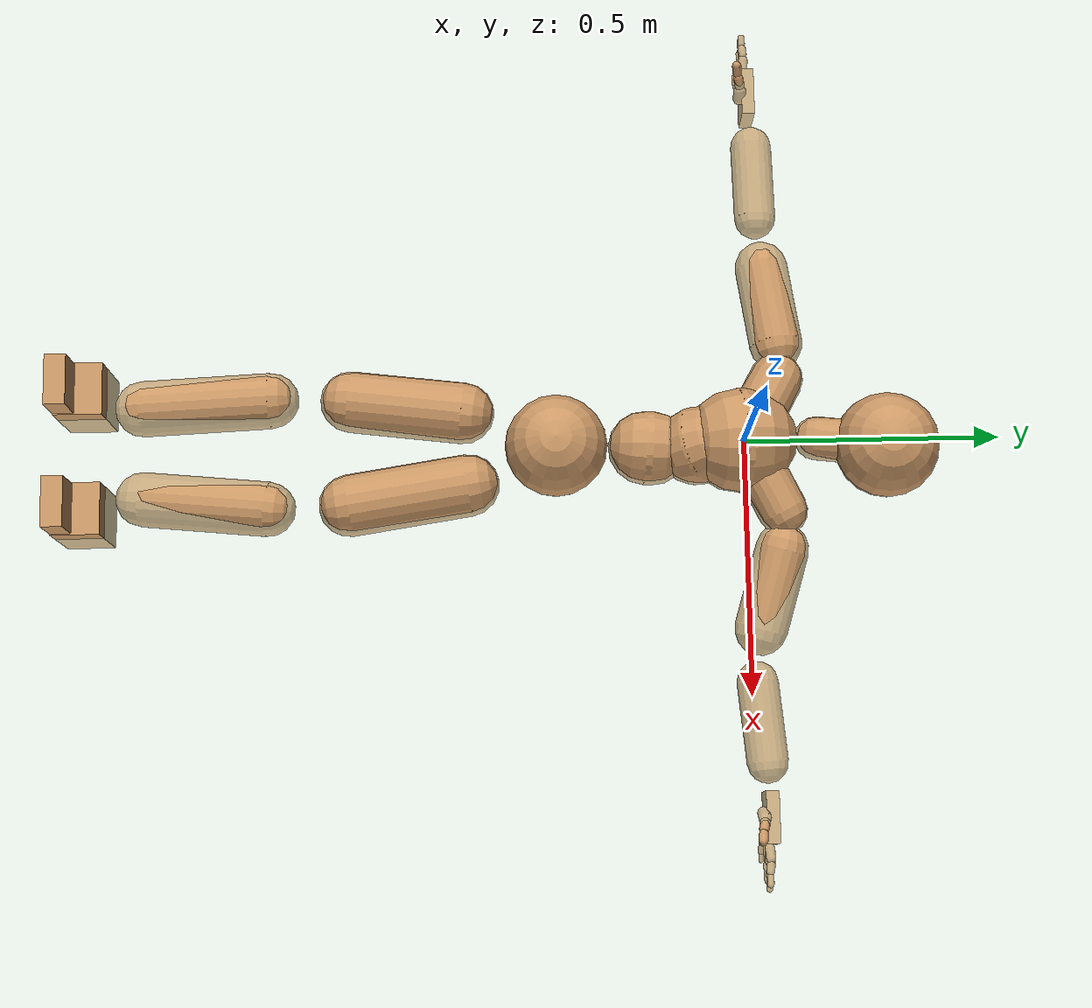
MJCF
<mujoco model="humanoid">
  <compiler coordinate="local"/>
  <default>
    <joint damping="0.0" armature="0.01" stiffness="0.0" limited="true"/>
    <geom conaffinity="1" condim="3" contype="7" margin="0.001" rgba="0.8 0.6 .4 1"/>
  </default>
  <asset>
    <texture type="skybox" builtin="gradient" rgb1=".4 .5 .6" rgb2="0 0 0" width="100" height="100"/>
    <texture builtin="flat" height="1278" mark="cross" markrgb="1 1 1" name="texgeom" random="0.01" rgb1="0.8 0.6 0.4" rgb2="0.8 0.6 0.4" type="cube" width="127"/>
    <texture builtin="checker" height="100" name="texplane" rgb1="0 0 0" rgb2="0.8 0.8 0.8" type="2d" width="100"/>
    <material name="MatPlane" reflectance="0.5" shininess="1" specular="1" texrepeat="60 60" texture="texplane"/>
    <material name="geom" texture="texgeom" texuniform="true"/>
  </asset>
  <worldbody>
    <light cutoff="100" diffuse="1 1 1" dir="-0 0 -1.3" directional="true" exponent="1" pos="0 0 1.3" specular=".1 .1 .1"/>
    <geom conaffinity="1" condim="3" name="floor" pos="0 0 0" rgba="0.8 0.9 0.8 1" size="100 100 .2" type="plane" material="MatPlane"/>
    <body name="Pelvis" pos="0.003 -0.3689 0.0058">
      <freejoint name="Pelvis"/>
      <geom type="sphere" contype="1" conaffinity="1" density="4629.6296296296305" size="0.1006" pos="0.0000 0.0000 0.0000" name="Pelvis"/>
      <body name="L_Hip" pos="0.0589 -0.0956 -0.0272">
        <joint name="L_Hip_x" type="hinge" pos="0 0 0" axis="1 0 0" user="250 2.5 1 500 10 2" armature="0.01" range="-90.0000 90.0000" damping="0" stiffness="0"/>
        <joint name="L_Hip_y" type="hinge" pos="0 0 0" axis="0 1 0" user="250 2.5 1 500 10 2" armature="0.01" range="-90.0000 90.0000" damping="0" stiffness="0"/>
        <joint name="L_Hip_z" type="hinge" pos="0 0 0" axis="0 0 1" user="250 2.5 1 500 10 2" armature="0.01" range="-90.0000 90.0000" damping="0" stiffness="0"/>
        <geom type="capsule" contype="1" conaffinity="1" density="2040.816327" fromto="0.0118 -0.0779 -0.0018 0.0471 -0.3116 -0.0070" size="0.0612" name="L_Hip"/>
        <body name="L_Knee" pos="0.0589 -0.3895 -0.0088">
          <joint name="L_Knee_x" type="hinge" pos="0 0 0" axis="1 0 0" user="250 2.5 1 500 10 2" armature="0.01" range="-180.0000 180.0000" damping="0" stiffness="0"/>
          <joint name="L_Knee_y" type="hinge" pos="0 0 0" axis="0 1 0" user="250 2.5 1 500 10 2" armature="0.01" range="-5.6250 5.6250" damping="0" stiffness="0"/>
          <joint name="L_Knee_z" type="hinge" pos="0 0 0" axis="0 0 1" user="250 2.5 1 500 10 2" armature="0.01" range="-5.6250 5.6250" damping="0" stiffness="0"/>
          <geom type="capsule" contype="1" conaffinity="1" density="1234.567901" fromto="-0.0089 -0.0833 -0.0065 -0.0357 -0.3330 -0.0259" size="0.0541" name="L_Knee"/>
          <body name="L_Ankle" pos="-0.0447 -0.4163 -0.0324">
            <joint name="L_Ankle_x" type="hinge" pos="0 0 0" axis="1 0 0" user="150 2.5 1 500 10 2" armature="0.01" range="-90.0000 90.0000" damping="0" stiffness="0"/>
            <joint name="L_Ankle_y" type="hinge" pos="0 0 0" axis="0 1 0" user="150 2.5 1 500 10 2" armature="0.01" range="-90.0000 90.0000" damping="0" stiffness="0"/>
            <joint name="L_Ankle_z" type="hinge" pos="0 0 0" axis="0 0 1" user="150 2.5 1 500 10 2" armature="0.01" range="-90.0000 90.0000" damping="0" stiffness="0"/>
            <geom type="box" density="448.517734" pos="0.0424 -0.0307 0.0241" size="0.0513 0.0479 0.0884" quat="1.0000 0.0000 0.0000 0.0000" name="L_Ankle"/>
            <body name="L_Toe" pos="0.0492 -0.0612 0.1219">
              <joint name="L_Toe_x" type="hinge" pos="0 0 0" axis="1 0 0" user="150 1 1 500 1 1" armature="0.01" range="-90.0000 90.0000" damping="0" stiffness="0"/>
              <joint name="L_Toe_y" type="hinge" pos="0 0 0" axis="0 1 0" user="150 1 1 500 1 1" armature="0.01" range="-45.0000 45.0000" damping="0" stiffness="0"/>
              <joint name="L_Toe_z" type="hinge" pos="0 0 0" axis="0 0 1" user="150 1 1 500 1 1" armature="0.01" range="-45.0000 45.0000" damping="0" stiffness="0"/>
              <geom type="box" density="420.720286" pos="-0.0068 0.0035 0.0265" size="0.0491 0.0209 0.051" quat="1.0000 0.0000 0.0000 0.0000" name="L_Toe"/>
            </body>
          </body>
        </body>
      </body>
      <body name="R_Hip" pos="-0.064 -0.107 -0.0224">
        <joint name="R_Hip_x" type="hinge" pos="0 0 0" axis="1 0 0" user="250 2.5 1 500 10 2" armature="0.01" range="-90.0000 90.0000" damping="0" stiffness="0"/>
        <joint name="R_Hip_y" type="hinge" pos="0 0 0" axis="0 1 0" user="250 2.5 1 500 10 2" armature="0.01" range="-90.0000 90.0000" damping="0" stiffness="0"/>
        <joint name="R_Hip_z" type="hinge" pos="0 0 0" axis="0 0 1" user="250 2.5 1 500 10 2" armature="0.01" range="-90.0000 90.0000" damping="0" stiffness="0"/>
        <geom type="capsule" contype="1" conaffinity="1" density="2040.816327" fromto="-0.0096 -0.0745 -0.0033 -0.0385 -0.2981 -0.0131" size="0.0604" name="R_Hip"/>
        <body name="R_Knee" pos="-0.0481 -0.3726 -0.0164">
          <joint name="R_Knee_x" type="hinge" pos="0 0 0" axis="1 0 0" user="250 2.5 1 500 10 2" armature="0.01" range="-180.0000 180.0000" damping="0" stiffness="0"/>
          <joint name="R_Knee_y" type="hinge" pos="0 0 0" axis="0 1 0" user="250 2.5 1 500 10 2" armature="0.01" range="-5.6250 5.6250" damping="0" stiffness="0"/>
          <joint name="R_Knee_z" type="hinge" pos="0 0 0" axis="0 0 1" user="250 2.5 1 500 10 2" armature="0.01" range="-5.6250 5.6250" damping="0" stiffness="0"/>
          <geom type="capsule" contype="1" conaffinity="1" density="1234.567901" fromto="0.0031 -0.0849 -0.0041 0.0125 -0.3396 -0.0162" size="0.0558" name="R_Knee"/>
          <body name="R_Ankle" pos="0.0157 -0.4245 -0.0203">
            <joint name="R_Ankle_x" type="hinge" pos="0 0 0" axis="1 0 0" user="150 1 1 500 10 2" armature="0.01" range="-90.0000 90.0000" damping="0" stiffness="0"/>
            <joint name="R_Ankle_y" type="hinge" pos="0 0 0" axis="0 1 0" user="150 1 1 500 10 2" armature="0.01" range="-90.0000 90.0000" damping="0" stiffness="0"/>
            <joint name="R_Ankle_z" type="hinge" pos="0 0 0" axis="0 0 1" user="150 1 1 500 10 2" armature="0.01" range="-90.0000 90.0000" damping="0" stiffness="0"/>
            <geom type="box" density="448.503667" pos="-0.0253 -0.0280 0.0148" size="0.0513 0.0479 0.0884" quat="1.0000 0.0000 0.0000 0.0000" name="R_Ankle"/>
            <body name="R_Toe" pos="-0.0402 -0.0613 0.1226">
              <joint name="R_Toe_x" type="hinge" pos="0 0 0" axis="1 0 0" user="150 1 1 500 1 1" armature="0.01" range="-90.0000 90.0000" damping="0" stiffness="0"/>
              <joint name="R_Toe_y" type="hinge" pos="0 0 0" axis="0 1 0" user="150 1 1 500 1 1" armature="0.01" range="-45.0000 45.0000" damping="0" stiffness="0"/>
              <joint name="R_Toe_z" type="hinge" pos="0 0 0" axis="0 0 1" user="150 1 1 500 1 1" armature="0.01" range="-45.0000 45.0000" damping="0" stiffness="0"/>
              <geom type="box" density="420.7149" pos="0.0149 0.0063 0.0164" size="0.0491 0.0209 0.051" quat="1.0000 0.0000 0.0000 0.0000" name="R_Toe"/>
            </body>
          </body>
        </body>
      </body>
      <body name="Torso" pos="-0.0029 0.1135 -0.0273">
        <joint name="Torso_x" type="hinge" pos="0 0 0" axis="1 0 0" user="500 5 1 500 10 2" armature="0.01" range="-60.0000 60.0000" damping="0" stiffness="0"/>
        <joint name="Torso_y" type="hinge" pos="0 0 0" axis="0 1 0" user="500 5 1 500 10 2" armature="0.01" range="-60.0000 60.0000" damping="0" stiffness="0"/>
        <joint name="Torso_z" type="hinge" pos="0 0 0" axis="0 0 1" user="500 5 1 500 10 2" armature="0.01" range="-60.0000 60.0000" damping="0" stiffness="0"/>
        <geom type="capsule" contype="1" conaffinity="1" density="2040.816327" fromto="0.0045 0.0621 -0.0021 0.0054 0.0759 -0.0025" size="0.0733" name="Torso"/>
        <body name="Spine" pos="0.0099 0.1381 -0.0046">
          <joint name="Spine_x" type="hinge" pos="0 0 0" axis="1 0 0" user="500 5 1 500 10 2" armature="0.01" range="-60.0000 60.0000" damping="0" stiffness="0"/>
          <joint name="Spine_y" type="hinge" pos="0 0 0" axis="0 1 0" user="500 5 1 500 10 2" armature="0.01" range="-60.0000 60.0000" damping="0" stiffness="0"/>
          <joint name="Spine_z" type="hinge" pos="0 0 0" axis="0 0 1" user="500 5 1 500 10 2" armature="0.01" range="-60.0000 60.0000" damping="0" stiffness="0"/>
          <geom type="capsule" contype="1" conaffinity="1" density="2040.816327" fromto="-0.0052 0.0248 0.0129 -0.0064 0.0303 0.0158" size="0.0772" name="Spine"/>
          <body name="Chest" pos="-0.0116 0.055 0.0287">
            <joint name="Chest_x" type="hinge" pos="0 0 0" axis="1 0 0" user="500 5 1 500 10 2" armature="0.01" range="-60.0000 60.0000" damping="0" stiffness="0"/>
            <joint name="Chest_y" type="hinge" pos="0 0 0" axis="0 1 0" user="500 5 1 500 10 2" armature="0.01" range="-60.0000 60.0000" damping="0" stiffness="0"/>
            <joint name="Chest_z" type="hinge" pos="0 0 0" axis="0 0 1" user="500 5 1 500 10 2" armature="0.01" range="-60.0000 60.0000" damping="0" stiffness="0"/>
            <geom type="capsule" contype="1" conaffinity="1" density="2040.816327" fromto="-0.0019 0.0521 -0.0073 -0.0024 0.0637 -0.0089" size="0.1036" name="Chest"/>
            <body name="Neck" pos="-0.0118 0.1719 -0.0289">
              <joint name="Neck_x" type="hinge" pos="0 0 0" axis="1 0 0" user="150 1 1 250 50 4" armature="0.01" range="-180.0000 180.0000" damping="0" stiffness="0"/>
              <joint name="Neck_y" type="hinge" pos="0 0 0" axis="0 1 0" user="150 1 1 250 50 4" armature="0.01" range="-180.0000 180.0000" damping="0" stiffness="0"/>
              <joint name="Neck_z" type="hinge" pos="0 0 0" axis="0 0 1" user="150 1 1 250 50 4" armature="0.01" range="-180.0000 180.0000" damping="0" stiffness="0"/>
              <geom type="capsule" contype="1" conaffinity="1" density="1000" fromto="0.0050 0.0342 0.0055 0.0200 0.1366 0.0220" size="0.0429" name="Neck"/>
              <body name="Head" pos="0.025 0.1708 0.0275">
                <joint name="Head_x" type="hinge" pos="0 0 0" axis="1 0 0" user="150 1 1 250 50 4" armature="0.01" range="-90.0000 90.0000" damping="0" stiffness="0"/>
                <joint name="Head_y" type="hinge" pos="0 0 0" axis="0 1 0" user="150 1 1 250 50 4" armature="0.01" range="-90.0000 90.0000" damping="0" stiffness="0"/>
                <joint name="Head_z" type="hinge" pos="0 0 0" axis="0 0 1" user="150 1 1 250 50 4" armature="0.01" range="-90.0000 90.0000" damping="0" stiffness="0"/>
                <geom type="sphere" contype="1" conaffinity="1" density="1000" size="0.1035" pos="0.0000 0.0000 0.0000" name="Head"/>
              </body>
            </body>
            <body name="L_Thorax" pos="0.0454 0.0881 -0.0065">
              <joint name="L_Thorax_x" type="hinge" pos="0 0 0" axis="1 0 0" user="200 2 1 500 50 4" armature="0.01" range="-180.0000 180.0000" damping="0" stiffness="0"/>
              <joint name="L_Thorax_y" type="hinge" pos="0 0 0" axis="0 1 0" user="200 2 1 500 50 4" armature="0.01" range="-180.0000 180.0000" damping="0" stiffness="0"/>
              <joint name="L_Thorax_z" type="hinge" pos="0 0 0" axis="0 0 1" user="200 2 1 500 50 4" armature="0.01" range="-180.0000 180.0000" damping="0" stiffness="0"/>
              <geom type="capsule" contype="1" conaffinity="1" density="1000" fromto="0.0231 0.0120 -0.0037 0.0922 0.0479 -0.0150" size="0.0487" name="L_Thorax"/>
              <body name="L_Shoulder" pos="0.1153 0.0598 -0.0187">
                <joint name="L_Shoulder_x" type="hinge" pos="0 0 0" axis="1 0 0" user="200 2 1 500 50 4" armature="0.01" range="-180.0000 180.0000" damping="0" stiffness="0"/>
                <joint name="L_Shoulder_y" type="hinge" pos="0 0 0" axis="0 1 0" user="200 2 1 500 50 4" armature="0.01" range="-180.0000 180.0000" damping="0" stiffness="0"/>
                <joint name="L_Shoulder_z" type="hinge" pos="0 0 0" axis="0 0 1" user="200 2 1 500 50 4" armature="0.01" range="-180.0000 180.0000" damping="0" stiffness="0"/>
                <geom type="capsule" contype="1" conaffinity="1" density="1000" fromto="0.0511 -0.0148 -0.0083 0.2043 -0.0593 -0.0331" size="0.0523" name="L_Shoulder"/>
                <body name="L_Elbow" pos="0.2554 -0.0742 -0.0414">
                  <joint name="L_Elbow_x" type="hinge" pos="0 0 0" axis="1 0 0" user="150 1 1 150 10 2" armature="0.01" range="-720.0000 720.0000" damping="0" stiffness="0"/>
                  <joint name="L_Elbow_y" type="hinge" pos="0 0 0" axis="0 1 0" user="150 1 1 150 10 2" armature="0.01" range="-720.0000 720.0000" damping="0" stiffness="0"/>
                  <joint name="L_Elbow_z" type="hinge" pos="0 0 0" axis="0 0 1" user="150 1 1 150 10 2" armature="0.01" range="-720.0000 720.0000" damping="0" stiffness="0"/>
                  <geom type="capsule" contype="1" conaffinity="1" density="1000" fromto="0.0519 0.0049 -0.0005 0.2076 0.0194 -0.0020" size="0.0407" name="L_Elbow"/>
                  <body name="L_Wrist" pos="0.2595 0.0243 -0.0024">
                    <joint name="L_Wrist_x" type="hinge" pos="0 0 0" axis="1 0 0" user="100 1 1 150 1 1" armature="0.01" range="-180.0000 180.0000" damping="0" stiffness="0"/>
                    <joint name="L_Wrist_y" type="hinge" pos="0 0 0" axis="0 1 0" user="100 1 1 150 1 1" armature="0.01" range="-180.0000 180.0000" damping="0" stiffness="0"/>
                    <joint name="L_Wrist_z" type="hinge" pos="0 0 0" axis="0 0 1" user="100 1 1 150 1 1" armature="0.01" range="-180.0000 180.0000" damping="0" stiffness="0"/>
                    <geom type="box" density="1201.335528" pos="0.0545 -0.0015 -0.0033" size="0.0504 0.0126 0.0469" quat="1.0000 0.0000 0.0000 0.0000" name="L_Wrist"/>
                    <body name="L_Index1" pos="0.1061 -0.0089 0.0196">
                      <joint name="L_Index1_x" type="hinge" pos="0 0 0" axis="1 0 0" user="100 10 1 150" armature="0.01" range="-180.0000 180.0000" damping="0" stiffness="0"/>
                      <joint name="L_Index1_y" type="hinge" pos="0 0 0" axis="0 1 0" user="100 10 1 150" armature="0.01" range="-180.0000 180.0000" damping="0" stiffness="0"/>
                      <joint name="L_Index1_z" type="hinge" pos="0 0 0" axis="0 0 1" user="100 10 1 150" armature="0.01" range="-180.0000 180.0000" damping="0" stiffness="0"/>
                      <geom type="capsule" contype="1" conaffinity="1" density="1000" fromto="0.0065 0.0005 0.0006 0.0261 0.0019 0.0023" size="0.0093" name="L_Index1"/>
                      <body name="L_Index2" pos="0.0326 0.0023 0.0029">
                        <joint name="L_Index2_x" type="hinge" pos="0 0 0" axis="1 0 0" user="100 10 1 150" armature="0.01" range="-180.0000 180.0000" damping="0" stiffness="0"/>
                        <joint name="L_Index2_y" type="hinge" pos="0 0 0" axis="0 1 0" user="100 10 1 150" armature="0.01" range="-180.0000 180.0000" damping="0" stiffness="0"/>
                        <joint name="L_Index2_z" type="hinge" pos="0 0 0" axis="0 0 1" user="100 10 1 150" armature="0.01" range="-180.0000 180.0000" damping="0" stiffness="0"/>
                        <geom type="capsule" contype="1" conaffinity="1" density="1000" fromto="0.0046 -0.0005 -0.0000 0.0184 -0.0019 -0.0001" size="0.0078" name="L_Index2"/>
                        <body name="L_Index3" pos="0.023 -0.0024 -0.0001">
                          <joint name="L_Index3_x" type="hinge" pos="0 0 0" axis="1 0 0" user="100 10 1 150" armature="0.01" range="-180.0000 180.0000" damping="0" stiffness="0"/>
                          <joint name="L_Index3_y" type="hinge" pos="0 0 0" axis="0 1 0" user="100 10 1 150" armature="0.01" range="-180.0000 180.0000" damping="0" stiffness="0"/>
                          <joint name="L_Index3_z" type="hinge" pos="0 0 0" axis="0 0 1" user="100 10 1 150" armature="0.01" range="-180.0000 180.0000" damping="0" stiffness="0"/>
                          <geom type="capsule" contype="1" conaffinity="1" density="1000" fromto="0.0050 -0.0001 0.0004 0.0200 -0.0003 0.0015" size="0.0065" name="L_Index3"/>
                        </body>
                      </body>
                    </body>
                    <body name="L_Middle1" pos="0.1139 -0.0065 -0.0043">
                      <joint name="L_Middle1_x" type="hinge" pos="0 0 0" axis="1 0 0" user="100 10 1 150" armature="0.01" range="-180.0000 180.0000" damping="0" stiffness="0"/>
                      <joint name="L_Middle1_y" type="hinge" pos="0 0 0" axis="0 1 0" user="100 10 1 150" armature="0.01" range="-180.0000 180.0000" damping="0" stiffness="0"/>
                      <joint name="L_Middle1_z" type="hinge" pos="0 0 0" axis="0 0 1" user="100 10 1 150" armature="0.01" range="-180.0000 180.0000" damping="0" stiffness="0"/>
                      <geom type="capsule" contype="1" conaffinity="1" density="1000" fromto="0.0063 0.0002 -0.0008 0.0250 0.0006 -0.0033" size="0.0096" name="L_Middle1"/>
                      <body name="L_Middle2" pos="0.0313 0.0008 -0.0041">
                        <joint name="L_Middle2_x" type="hinge" pos="0 0 0" axis="1 0 0" user="100 10 1 150" armature="0.01" range="-180.0000 180.0000" damping="0" stiffness="0"/>
                        <joint name="L_Middle2_y" type="hinge" pos="0 0 0" axis="0 1 0" user="100 10 1 150" armature="0.01" range="-180.0000 180.0000" damping="0" stiffness="0"/>
                        <joint name="L_Middle2_z" type="hinge" pos="0 0 0" axis="0 0 1" user="100 10 1 150" armature="0.01" range="-180.0000 180.0000" damping="0" stiffness="0"/>
                        <geom type="capsule" contype="1" conaffinity="1" density="1000" fromto="0.0048 -0.0004 -0.0009 0.0192 -0.0016 -0.0034" size="0.0072" name="L_Middle2"/>
                        <body name="L_Middle3" pos="0.024 -0.002 -0.0043">
                          <joint name="L_Middle3_x" type="hinge" pos="0 0 0" axis="1 0 0" user="100 10 1 150" armature="0.01" range="-180.0000 180.0000" damping="0" stiffness="0"/>
                          <joint name="L_Middle3_y" type="hinge" pos="0 0 0" axis="0 1 0" user="100 10 1 150" armature="0.01" range="-180.0000 180.0000" damping="0" stiffness="0"/>
                          <joint name="L_Middle3_z" type="hinge" pos="0 0 0" axis="0 0 1" user="100 10 1 150" armature="0.01" range="-180.0000 180.0000" damping="0" stiffness="0"/>
                          <geom type="capsule" contype="1" conaffinity="1" density="1000" fromto="0.0052 -0.0000 -0.0005 0.0208 -0.0000 -0.0018" size="0.0062" name="L_Middle3"/>
                        </body>
                      </body>
                    </body>
                    <body name="L_Pinky1" pos="0.088 -0.0149 -0.0448">
                      <joint name="L_Pinky1_x" type="hinge" pos="0 0 0" axis="1 0 0" user="100 10 1 150" armature="0.01" range="-180.0000 180.0000" damping="0" stiffness="0"/>
                      <joint name="L_Pinky1_y" type="hinge" pos="0 0 0" axis="0 1 0" user="100 10 1 150" armature="0.01" range="-180.0000 180.0000" damping="0" stiffness="0"/>
                      <joint name="L_Pinky1_z" type="hinge" pos="0 0 0" axis="0 0 1" user="100 10 1 150" armature="0.01" range="-180.0000 180.0000" damping="0" stiffness="0"/>
                      <geom type="capsule" contype="1" conaffinity="1" density="1000" fromto="0.0032 -0.0002 -0.0024 0.0128 -0.0009 -0.0097" size="0.0068" name="L_Pinky1"/>
                      <body name="L_Pinky2" pos="0.016 -0.0012 -0.0121">
                        <joint name="L_Pinky2_x" type="hinge" pos="0 0 0" axis="1 0 0" user="100 10 1 150" armature="0.01" range="-180.0000 180.0000" damping="0" stiffness="0"/>
                        <joint name="L_Pinky2_y" type="hinge" pos="0 0 0" axis="0 1 0" user="100 10 1 150" armature="0.01" range="-180.0000 180.0000" damping="0" stiffness="0"/>
                        <joint name="L_Pinky2_z" type="hinge" pos="0 0 0" axis="0 0 1" user="100 10 1 150" armature="0.01" range="-180.0000 180.0000" damping="0" stiffness="0"/>
                        <geom type="capsule" contype="1" conaffinity="1" density="1000" fromto="0.0032 -0.0003 -0.0023 0.0127 -0.0014 -0.0090" size="0.0066" name="L_Pinky2"/>
                        <body name="L_Pinky3" pos="0.0159 -0.0017 -0.0113">
                          <joint name="L_Pinky3_x" type="hinge" pos="0 0 0" axis="1 0 0" user="100 10 1 150" armature="0.01" range="-180.0000 180.0000" damping="0" stiffness="0"/>
                          <joint name="L_Pinky3_y" type="hinge" pos="0 0 0" axis="0 1 0" user="100 10 1 150" armature="0.01" range="-180.0000 180.0000" damping="0" stiffness="0"/>
                          <joint name="L_Pinky3_z" type="hinge" pos="0 0 0" axis="0 0 1" user="100 10 1 150" armature="0.01" range="-180.0000 180.0000" damping="0" stiffness="0"/>
                          <geom type="capsule" contype="1" conaffinity="1" density="1000" fromto="0.0036 0.0001 -0.0019 0.0143 0.0002 -0.0074" size="0.005" name="L_Pinky3"/>
                        </body>
                      </body>
                    </body>
                    <body name="L_Ring1" pos="0.1018 -0.0095 -0.0281">
                      <joint name="L_Ring1_x" type="hinge" pos="0 0 0" axis="1 0 0" user="100 10 1 150" armature="0.01" range="-180.0000 180.0000" damping="0" stiffness="0"/>
                      <joint name="L_Ring1_y" type="hinge" pos="0 0 0" axis="0 1 0" user="100 10 1 150" armature="0.01" range="-180.0000 180.0000" damping="0" stiffness="0"/>
                      <joint name="L_Ring1_z" type="hinge" pos="0 0 0" axis="0 0 1" user="100 10 1 150" armature="0.01" range="-180.0000 180.0000" damping="0" stiffness="0"/>
                      <geom type="capsule" contype="1" conaffinity="1" density="1000" fromto="0.0058 0.0003 -0.0011 0.0230 0.0013 -0.0043" size="0.0081" name="L_Ring1"/>
                      <body name="L_Ring2" pos="0.0288 0.0016 -0.0053">
                        <joint name="L_Ring2_x" type="hinge" pos="0 0 0" axis="1 0 0" user="100 10 1 150" armature="0.01" range="-180.0000 180.0000" damping="0" stiffness="0"/>
                        <joint name="L_Ring2_y" type="hinge" pos="0 0 0" axis="0 1 0" user="100 10 1 150" armature="0.01" range="-180.0000 180.0000" damping="0" stiffness="0"/>
                        <joint name="L_Ring2_z" type="hinge" pos="0 0 0" axis="0 0 1" user="100 10 1 150" armature="0.01" range="-180.0000 180.0000" damping="0" stiffness="0"/>
                        <geom type="capsule" contype="1" conaffinity="1" density="1000" fromto="0.0047 -0.0003 -0.0015 0.0187 -0.0012 -0.0058" size="0.0076" name="L_Ring2"/>
                        <body name="L_Ring3" pos="0.0233 -0.0015 -0.0073">
                          <joint name="L_Ring3_x" type="hinge" pos="0 0 0" axis="1 0 0" user="100 10 1 150" armature="0.01" range="-180.0000 180.0000" damping="0" stiffness="0"/>
                          <joint name="L_Ring3_y" type="hinge" pos="0 0 0" axis="0 1 0" user="100 10 1 150" armature="0.01" range="-180.0000 180.0000" damping="0" stiffness="0"/>
                          <joint name="L_Ring3_z" type="hinge" pos="0 0 0" axis="0 0 1" user="100 10 1 150" armature="0.01" range="-180.0000 180.0000" damping="0" stiffness="0"/>
                          <geom type="capsule" contype="1" conaffinity="1" density="1000" fromto="0.0051 0.0001 -0.0011 0.0203 0.0004 -0.0042" size="0.0059" name="L_Ring3"/>
                        </body>
                      </body>
                    </body>
                    <body name="L_Thumb1" pos="0.0427 -0.0187 0.0263">
                      <joint name="L_Thumb1_x" type="hinge" pos="0 0 0" axis="1 0 0" user="100 10 1 150" armature="0.01" range="-180.0000 180.0000" damping="0" stiffness="0"/>
                      <joint name="L_Thumb1_y" type="hinge" pos="0 0 0" axis="0 1 0" user="100 10 1 150" armature="0.01" range="-180.0000 180.0000" damping="0" stiffness="0"/>
                      <joint name="L_Thumb1_z" type="hinge" pos="0 0 0" axis="0 0 1" user="100 10 1 150" armature="0.01" range="-180.0000 180.0000" damping="0" stiffness="0"/>
                      <geom type="capsule" contype="1" conaffinity="1" density="1000" fromto="0.0035 0.0002 0.0051 0.0141 0.0008 0.0204" size="0.0124" name="L_Thumb1"/>
                      <body name="L_Thumb2" pos="0.0177 0.001 0.0255">
                        <joint name="L_Thumb2_x" type="hinge" pos="0 0 0" axis="1 0 0" user="100 10 1 150" armature="0.01" range="-180.0000 180.0000" damping="0" stiffness="0"/>
                        <joint name="L_Thumb2_y" type="hinge" pos="0 0 0" axis="0 1 0" user="100 10 1 150" armature="0.01" range="-180.0000 180.0000" damping="0" stiffness="0"/>
                        <joint name="L_Thumb2_z" type="hinge" pos="0 0 0" axis="0 0 1" user="100 10 1 150" armature="0.01" range="-180.0000 180.0000" damping="0" stiffness="0"/>
                        <geom type="capsule" contype="1" conaffinity="1" density="1000" fromto="0.0043 -0.0010 0.0031 0.0171 -0.0041 0.0126" size="0.0098" name="L_Thumb2"/>
                        <body name="L_Thumb3" pos="0.0214 -0.0052 0.0157">
                          <joint name="L_Thumb3_x" type="hinge" pos="0 0 0" axis="1 0 0" user="100 10 1 150" armature="0.01" range="-180.0000 180.0000" damping="0" stiffness="0"/>
                          <joint name="L_Thumb3_y" type="hinge" pos="0 0 0" axis="0 1 0" user="100 10 1 150" armature="0.01" range="-180.0000 180.0000" damping="0" stiffness="0"/>
                          <joint name="L_Thumb3_z" type="hinge" pos="0 0 0" axis="0 0 1" user="100 10 1 150" armature="0.01" range="-180.0000 180.0000" damping="0" stiffness="0"/>
                          <geom type="capsule" contype="1" conaffinity="1" density="1000" fromto="0.0047 -0.0006 0.0035 0.0187 -0.0025 0.0142" size="0.0089" name="L_Thumb3"/>
                        </body>
                      </body>
                    </body>
                  </body>
                </body>
              </body>
            </body>
            <body name="R_Thorax" pos="-0.0465 0.0873 -0.0132">
              <joint name="R_Thorax_x" type="hinge" pos="0 0 0" axis="1 0 0" user="200 2 1 150 10 2" armature="0.01" range="-180.0000 180.0000" damping="0" stiffness="0"/>
              <joint name="R_Thorax_y" type="hinge" pos="0 0 0" axis="0 1 0" user="200 2 1 150 10 2" armature="0.01" range="-180.0000 180.0000" damping="0" stiffness="0"/>
              <joint name="R_Thorax_z" type="hinge" pos="0 0 0" axis="0 0 1" user="200 2 1 150 10 2" armature="0.01" range="-180.0000 180.0000" damping="0" stiffness="0"/>
              <geom type="capsule" contype="1" conaffinity="1" density="1000" fromto="-0.0199 0.0111 -0.0029 -0.0797 0.0443 -0.0117" size="0.0535" name="R_Thorax"/>
              <body name="R_Shoulder" pos="-0.0996 0.0554 -0.0147">
                <joint name="R_Shoulder_x" type="hinge" pos="0 0 0" axis="1 0 0" user="200 2 1 250 10 2" armature="0.01" range="-180.0000 180.0000" damping="0" stiffness="0"/>
                <joint name="R_Shoulder_y" type="hinge" pos="0 0 0" axis="0 1 0" user="200 2 1 250 10 2" armature="0.01" range="-180.0000 180.0000" damping="0" stiffness="0"/>
                <joint name="R_Shoulder_z" type="hinge" pos="0 0 0" axis="0 0 1" user="200 2 1 250 10 2" armature="0.01" range="-180.0000 180.0000" damping="0" stiffness="0"/>
                <geom type="capsule" contype="1" conaffinity="1" density="1000" fromto="-0.0544 -0.0075 -0.0052 -0.2174 -0.0300 -0.0210" size="0.0523" name="R_Shoulder"/>
                <body name="R_Elbow" pos="-0.2718 -0.0375 -0.0262">
                  <joint name="R_Elbow_x" type="hinge" pos="0 0 0" axis="1 0 0" user="150 1 1 150 10 2" armature="0.01" range="-720.0000 720.0000" damping="0" stiffness="0"/>
                  <joint name="R_Elbow_y" type="hinge" pos="0 0 0" axis="0 1 0" user="150 1 1 150 10 2" armature="0.01" range="-720.0000 720.0000" damping="0" stiffness="0"/>
                  <joint name="R_Elbow_z" type="hinge" pos="0 0 0" axis="0 0 1" user="150 1 1 150 10 2" armature="0.01" range="-720.0000 720.0000" damping="0" stiffness="0"/>
                  <geom type="capsule" contype="1" conaffinity="1" density="1000" fromto="-0.0513 -0.0008 -0.0031 -0.2053 -0.0032 -0.0123" size="0.041" name="R_Elbow"/>
                  <body name="R_Wrist" pos="-0.2566 -0.0039 -0.0154">
                    <joint name="R_Wrist_x" type="hinge" pos="0 0 0" axis="1 0 0" user="100 1 1 150 1 1" armature="0.01" range="-180.0000 180.0000" damping="0" stiffness="0"/>
                    <joint name="R_Wrist_y" type="hinge" pos="0 0 0" axis="0 1 0" user="100 1 1 150 1 1" armature="0.01" range="-180.0000 180.0000" damping="0" stiffness="0"/>
                    <joint name="R_Wrist_z" type="hinge" pos="0 0 0" axis="0 0 1" user="100 1 1 150 1 1" armature="0.01" range="-180.0000 180.0000" damping="0" stiffness="0"/>
                    <geom type="box" density="1231.449299" pos="-0.0559 -0.0048 -0.0030" size="0.0474 0.0126 0.0469" quat="1.0000 0.0000 0.0000 0.0000" name="R_Wrist"/>
                    <body name="R_Index1" pos="-0.104 -0.0122 0.0199">
                      <joint name="R_Index1_x" type="hinge" pos="0 0 0" axis="1 0 0" user="100 10 1 150" armature="0.01" range="-180.0000 180.0000" damping="0" stiffness="0"/>
                      <joint name="R_Index1_y" type="hinge" pos="0 0 0" axis="0 1 0" user="100 10 1 150" armature="0.01" range="-180.0000 180.0000" damping="0" stiffness="0"/>
                      <joint name="R_Index1_z" type="hinge" pos="0 0 0" axis="0 0 1" user="100 10 1 150" armature="0.01" range="-180.0000 180.0000" damping="0" stiffness="0"/>
                      <geom type="capsule" contype="1" conaffinity="1" density="1000" fromto="-0.0065 0.0005 0.0006 -0.0261 0.0019 0.0023" size="0.0093" name="R_Index1"/>
                      <body name="R_Index2" pos="-0.0326 0.0023 0.0029">
                        <joint name="R_Index2_x" type="hinge" pos="0 0 0" axis="1 0 0" user="100 10 1 150" armature="0.01" range="-180.0000 180.0000" damping="0" stiffness="0"/>
                        <joint name="R_Index2_y" type="hinge" pos="0 0 0" axis="0 1 0" user="100 10 1 150" armature="0.01" range="-180.0000 180.0000" damping="0" stiffness="0"/>
                        <joint name="R_Index2_z" type="hinge" pos="0 0 0" axis="0 0 1" user="100 10 1 150" armature="0.01" range="-180.0000 180.0000" damping="0" stiffness="0"/>
                        <geom type="capsule" contype="1" conaffinity="1" density="1000" fromto="-0.0046 -0.0005 -0.0000 -0.0184 -0.0019 -0.0001" size="0.0078" name="R_Index2"/>
                        <body name="R_Index3" pos="-0.023 -0.0024 -0.0001">
                          <joint name="R_Index3_x" type="hinge" pos="0 0 0" axis="1 0 0" user="100 10 1 150" armature="0.01" range="-180.0000 180.0000" damping="0" stiffness="0"/>
                          <joint name="R_Index3_y" type="hinge" pos="0 0 0" axis="0 1 0" user="100 10 1 150" armature="0.01" range="-180.0000 180.0000" damping="0" stiffness="0"/>
                          <joint name="R_Index3_z" type="hinge" pos="0 0 0" axis="0 0 1" user="100 10 1 150" armature="0.01" range="-180.0000 180.0000" damping="0" stiffness="0"/>
                          <geom type="capsule" contype="1" conaffinity="1" density="1000" fromto="-0.0042 -0.0001 0.0004 -0.0168 -0.0003 0.0015" size="0.0068" name="R_Index3"/>
                        </body>
                      </body>
                    </body>
                    <body name="R_Middle1" pos="-0.1118 -0.0098 -0.0039">
                      <joint name="R_Middle1_x" type="hinge" pos="0 0 0" axis="1 0 0" user="100 10 1 150" armature="0.01" range="-180.0000 180.0000" damping="0" stiffness="0"/>
                      <joint name="R_Middle1_y" type="hinge" pos="0 0 0" axis="0 1 0" user="100 10 1 150" armature="0.01" range="-180.0000 180.0000" damping="0" stiffness="0"/>
                      <joint name="R_Middle1_z" type="hinge" pos="0 0 0" axis="0 0 1" user="100 10 1 150" armature="0.01" range="-180.0000 180.0000" damping="0" stiffness="0"/>
                      <geom type="capsule" contype="1" conaffinity="1" density="1000" fromto="-0.0063 0.0002 -0.0008 -0.0250 0.0006 -0.0033" size="0.0096" name="R_Middle1"/>
                      <body name="R_Middle2" pos="-0.0313 0.0008 -0.0041">
                        <joint name="R_Middle2_x" type="hinge" pos="0 0 0" axis="1 0 0" user="100 10 1 150" armature="0.01" range="-180.0000 180.0000" damping="0" stiffness="0"/>
                        <joint name="R_Middle2_y" type="hinge" pos="0 0 0" axis="0 1 0" user="100 10 1 150" armature="0.01" range="-180.0000 180.0000" damping="0" stiffness="0"/>
                        <joint name="R_Middle2_z" type="hinge" pos="0 0 0" axis="0 0 1" user="100 10 1 150" armature="0.01" range="-180.0000 180.0000" damping="0" stiffness="0"/>
                        <geom type="capsule" contype="1" conaffinity="1" density="1000" fromto="-0.0048 -0.0004 -0.0009 -0.0192 -0.0016 -0.0034" size="0.0072" name="R_Middle2"/>
                        <body name="R_Middle3" pos="-0.024 -0.002 -0.0043">
                          <joint name="R_Middle3_x" type="hinge" pos="0 0 0" axis="1 0 0" user="100 10 1 150" armature="0.01" range="-180.0000 180.0000" damping="0" stiffness="0"/>
                          <joint name="R_Middle3_y" type="hinge" pos="0 0 0" axis="0 1 0" user="100 10 1 150" armature="0.01" range="-180.0000 180.0000" damping="0" stiffness="0"/>
                          <joint name="R_Middle3_z" type="hinge" pos="0 0 0" axis="0 0 1" user="100 10 1 150" armature="0.01" range="-180.0000 180.0000" damping="0" stiffness="0"/>
                          <geom type="capsule" contype="1" conaffinity="1" density="1000" fromto="-0.0044 -0.0000 -0.0005 -0.0176 -0.0000 -0.0018" size="0.0065" name="R_Middle3"/>
                        </body>
                      </body>
                    </body>
                    <body name="R_Pinky1" pos="-0.0859 -0.0181 -0.0444">
                      <joint name="R_Pinky1_x" type="hinge" pos="0 0 0" axis="1 0 0" user="100 10 1 150" armature="0.01" range="-180.0000 180.0000" damping="0" stiffness="0"/>
                      <joint name="R_Pinky1_y" type="hinge" pos="0 0 0" axis="0 1 0" user="100 10 1 150" armature="0.01" range="-180.0000 180.0000" damping="0" stiffness="0"/>
                      <joint name="R_Pinky1_z" type="hinge" pos="0 0 0" axis="0 0 1" user="100 10 1 150" armature="0.01" range="-180.0000 180.0000" damping="0" stiffness="0"/>
                      <geom type="capsule" contype="1" conaffinity="1" density="1000" fromto="-0.0032 -0.0002 -0.0024 -0.0128 -0.0009 -0.0097" size="0.0068" name="R_Pinky1"/>
                      <body name="R_Pinky2" pos="-0.016 -0.0012 -0.0121">
                        <joint name="R_Pinky2_x" type="hinge" pos="0 0 0" axis="1 0 0" user="100 10 1 150" armature="0.01" range="-180.0000 180.0000" damping="0" stiffness="0"/>
                        <joint name="R_Pinky2_y" type="hinge" pos="0 0 0" axis="0 1 0" user="100 10 1 150" armature="0.01" range="-180.0000 180.0000" damping="0" stiffness="0"/>
                        <joint name="R_Pinky2_z" type="hinge" pos="0 0 0" axis="0 0 1" user="100 10 1 150" armature="0.01" range="-180.0000 180.0000" damping="0" stiffness="0"/>
                        <geom type="capsule" contype="1" conaffinity="1" density="1000" fromto="-0.0032 -0.0003 -0.0023 -0.0127 -0.0014 -0.0090" size="0.0066" name="R_Pinky2"/>
                        <body name="R_Pinky3" pos="-0.0159 -0.0017 -0.0113">
                          <joint name="R_Pinky3_x" type="hinge" pos="0 0 0" axis="1 0 0" user="100 10 1 150" armature="0.01" range="-180.0000 180.0000" damping="0" stiffness="0"/>
                          <joint name="R_Pinky3_y" type="hinge" pos="0 0 0" axis="0 1 0" user="100 10 1 150" armature="0.01" range="-180.0000 180.0000" damping="0" stiffness="0"/>
                          <joint name="R_Pinky3_z" type="hinge" pos="0 0 0" axis="0 0 1" user="100 10 1 150" armature="0.01" range="-180.0000 180.0000" damping="0" stiffness="0"/>
                          <geom type="capsule" contype="1" conaffinity="1" density="1000" fromto="-0.0028 0.0001 -0.0019 -0.0111 0.0002 -0.0074" size="0.0053" name="R_Pinky3"/>
                        </body>
                      </body>
                    </body>
                    <body name="R_Ring1" pos="-0.0997 -0.0127 -0.0277">
                      <joint name="R_Ring1_x" type="hinge" pos="0 0 0" axis="1 0 0" user="100 10 1 150" armature="0.01" range="-180.0000 180.0000" damping="0" stiffness="0"/>
                      <joint name="R_Ring1_y" type="hinge" pos="0 0 0" axis="0 1 0" user="100 10 1 150" armature="0.01" range="-180.0000 180.0000" damping="0" stiffness="0"/>
                      <joint name="R_Ring1_z" type="hinge" pos="0 0 0" axis="0 0 1" user="100 10 1 150" armature="0.01" range="-180.0000 180.0000" damping="0" stiffness="0"/>
                      <geom type="capsule" contype="1" conaffinity="1" density="1000" fromto="-0.0058 0.0003 -0.0011 -0.0230 0.0013 -0.0043" size="0.0081" name="R_Ring1"/>
                      <body name="R_Ring2" pos="-0.0288 0.0016 -0.0053">
                        <joint name="R_Ring2_x" type="hinge" pos="0 0 0" axis="1 0 0" user="100 10 1 150" armature="0.01" range="-180.0000 180.0000" damping="0" stiffness="0"/>
                        <joint name="R_Ring2_y" type="hinge" pos="0 0 0" axis="0 1 0" user="100 10 1 150" armature="0.01" range="-180.0000 180.0000" damping="0" stiffness="0"/>
                        <joint name="R_Ring2_z" type="hinge" pos="0 0 0" axis="0 0 1" user="100 10 1 150" armature="0.01" range="-180.0000 180.0000" damping="0" stiffness="0"/>
                        <geom type="capsule" contype="1" conaffinity="1" density="1000" fromto="-0.0047 -0.0003 -0.0015 -0.0187 -0.0012 -0.0058" size="0.0076" name="R_Ring2"/>
                        <body name="R_Ring3" pos="-0.0233 -0.0015 -0.0073">
                          <joint name="R_Ring3_x" type="hinge" pos="0 0 0" axis="1 0 0" user="100 10 1 150" armature="0.01" range="-180.0000 180.0000" damping="0" stiffness="0"/>
                          <joint name="R_Ring3_y" type="hinge" pos="0 0 0" axis="0 1 0" user="100 10 1 150" armature="0.01" range="-180.0000 180.0000" damping="0" stiffness="0"/>
                          <joint name="R_Ring3_z" type="hinge" pos="0 0 0" axis="0 0 1" user="100 10 1 150" armature="0.01" range="-180.0000 180.0000" damping="0" stiffness="0"/>
                          <geom type="capsule" contype="1" conaffinity="1" density="1000" fromto="-0.0043 0.0001 -0.0011 -0.0171 0.0004 -0.0042" size="0.0061" name="R_Ring3"/>
                        </body>
                      </body>
                    </body>
                    <body name="R_Thumb1" pos="-0.0406 -0.022 0.0266">
                      <joint name="R_Thumb1_x" type="hinge" pos="0 0 0" axis="1 0 0" user="100 10 1 150" armature="0.01" range="-180.0000 180.0000" damping="0" stiffness="0"/>
                      <joint name="R_Thumb1_y" type="hinge" pos="0 0 0" axis="0 1 0" user="100 10 1 150" armature="0.01" range="-180.0000 180.0000" damping="0" stiffness="0"/>
                      <joint name="R_Thumb1_z" type="hinge" pos="0 0 0" axis="0 0 1" user="100 10 1 150" armature="0.01" range="-180.0000 180.0000" damping="0" stiffness="0"/>
                      <geom type="capsule" contype="1" conaffinity="1" density="1000" fromto="-0.0035 0.0002 0.0051 -0.0141 0.0008 0.0204" size="0.0124" name="R_Thumb1"/>
                      <body name="R_Thumb2" pos="-0.0177 0.001 0.0255">
                        <joint name="R_Thumb2_x" type="hinge" pos="0 0 0" axis="1 0 0" user="100 10 1 150" armature="0.01" range="-180.0000 180.0000" damping="0" stiffness="0"/>
                        <joint name="R_Thumb2_y" type="hinge" pos="0 0 0" axis="0 1 0" user="100 10 1 150" armature="0.01" range="-180.0000 180.0000" damping="0" stiffness="0"/>
                        <joint name="R_Thumb2_z" type="hinge" pos="0 0 0" axis="0 0 1" user="100 10 1 150" armature="0.01" range="-180.0000 180.0000" damping="0" stiffness="0"/>
                        <geom type="capsule" contype="1" conaffinity="1" density="1000" fromto="-0.0043 -0.0010 0.0031 -0.0171 -0.0041 0.0126" size="0.0098" name="R_Thumb2"/>
                        <body name="R_Thumb3" pos="-0.0214 -0.0052 0.0157">
                          <joint name="R_Thumb3_x" type="hinge" pos="0 0 0" axis="1 0 0" user="100 10 1 150" armature="0.01" range="-180.0000 180.0000" damping="0" stiffness="0"/>
                          <joint name="R_Thumb3_y" type="hinge" pos="0 0 0" axis="0 1 0" user="100 10 1 150" armature="0.01" range="-180.0000 180.0000" damping="0" stiffness="0"/>
                          <joint name="R_Thumb3_z" type="hinge" pos="0 0 0" axis="0 0 1" user="100 10 1 150" armature="0.01" range="-180.0000 180.0000" damping="0" stiffness="0"/>
                          <geom type="capsule" contype="1" conaffinity="1" density="1000" fromto="-0.0039 -0.0006 0.0035 -0.0155 -0.0025 0.0142" size="0.0091" name="R_Thumb3"/>
                        </body>
                      </body>
                    </body>
                  </body>
                </body>
              </body>
            </body>
          </body>
        </body>
      </body>
    </body>
  </worldbody>
  <actuator>
    <motor name="L_Hip_x" joint="L_Hip_x" gear="1"/>
    <motor name="L_Hip_y" joint="L_Hip_y" gear="1"/>
    <motor name="L_Hip_z" joint="L_Hip_z" gear="1"/>
    <motor name="L_Knee_x" joint="L_Knee_x" gear="1"/>
    <motor name="L_Knee_y" joint="L_Knee_y" gear="1"/>
    <motor name="L_Knee_z" joint="L_Knee_z" gear="1"/>
    <motor name="L_Ankle_x" joint="L_Ankle_x" gear="1"/>
    <motor name="L_Ankle_y" joint="L_Ankle_y" gear="1"/>
    <motor name="L_Ankle_z" joint="L_Ankle_z" gear="1"/>
    <motor name="L_Toe_x" joint="L_Toe_x" gear="1"/>
    <motor name="L_Toe_y" joint="L_Toe_y" gear="1"/>
    <motor name="L_Toe_z" joint="L_Toe_z" gear="1"/>
    <motor name="R_Hip_x" joint="R_Hip_x" gear="1"/>
    <motor name="R_Hip_y" joint="R_Hip_y" gear="1"/>
    <motor name="R_Hip_z" joint="R_Hip_z" gear="1"/>
    <motor name="R_Knee_x" joint="R_Knee_x" gear="1"/>
    <motor name="R_Knee_y" joint="R_Knee_y" gear="1"/>
    <motor name="R_Knee_z" joint="R_Knee_z" gear="1"/>
    <motor name="R_Ankle_x" joint="R_Ankle_x" gear="1"/>
    <motor name="R_Ankle_y" joint="R_Ankle_y" gear="1"/>
    <motor name="R_Ankle_z" joint="R_Ankle_z" gear="1"/>
    <motor name="R_Toe_x" joint="R_Toe_x" gear="1"/>
    <motor name="R_Toe_y" joint="R_Toe_y" gear="1"/>
    <motor name="R_Toe_z" joint="R_Toe_z" gear="1"/>
    <motor name="Torso_x" joint="Torso_x" gear="1"/>
    <motor name="Torso_y" joint="Torso_y" gear="1"/>
    <motor name="Torso_z" joint="Torso_z" gear="1"/>
    <motor name="Spine_x" joint="Spine_x" gear="1"/>
    <motor name="Spine_y" joint="Spine_y" gear="1"/>
    <motor name="Spine_z" joint="Spine_z" gear="1"/>
    <motor name="Chest_x" joint="Chest_x" gear="1"/>
    <motor name="Chest_y" joint="Chest_y" gear="1"/>
    <motor name="Chest_z" joint="Chest_z" gear="1"/>
    <motor name="Neck_x" joint="Neck_x" gear="1"/>
    <motor name="Neck_y" joint="Neck_y" gear="1"/>
    <motor name="Neck_z" joint="Neck_z" gear="1"/>
    <motor name="Head_x" joint="Head_x" gear="1"/>
    <motor name="Head_y" joint="Head_y" gear="1"/>
    <motor name="Head_z" joint="Head_z" gear="1"/>
    <motor name="L_Thorax_x" joint="L_Thorax_x" gear="1"/>
    <motor name="L_Thorax_y" joint="L_Thorax_y" gear="1"/>
    <motor name="L_Thorax_z" joint="L_Thorax_z" gear="1"/>
    <motor name="L_Shoulder_x" joint="L_Shoulder_x" gear="1"/>
    <motor name="L_Shoulder_y" joint="L_Shoulder_y" gear="1"/>
    <motor name="L_Shoulder_z" joint="L_Shoulder_z" gear="1"/>
    <motor name="L_Elbow_x" joint="L_Elbow_x" gear="1"/>
    <motor name="L_Elbow_y" joint="L_Elbow_y" gear="1"/>
    <motor name="L_Elbow_z" joint="L_Elbow_z" gear="1"/>
    <motor name="L_Wrist_x" joint="L_Wrist_x" gear="1"/>
    <motor name="L_Wrist_y" joint="L_Wrist_y" gear="1"/>
    <motor name="L_Wrist_z" joint="L_Wrist_z" gear="1"/>
    <motor name="L_Index1_x" joint="L_Index1_x" gear="1"/>
    <motor name="L_Index1_y" joint="L_Index1_y" gear="1"/>
    <motor name="L_Index1_z" joint="L_Index1_z" gear="1"/>
    <motor name="L_Index2_x" joint="L_Index2_x" gear="1"/>
    <motor name="L_Index2_y" joint="L_Index2_y" gear="1"/>
    <motor name="L_Index2_z" joint="L_Index2_z" gear="1"/>
    <motor name="L_Index3_x" joint="L_Index3_x" gear="1"/>
    <motor name="L_Index3_y" joint="L_Index3_y" gear="1"/>
    <motor name="L_Index3_z" joint="L_Index3_z" gear="1"/>
    <motor name="L_Middle1_x" joint="L_Middle1_x" gear="1"/>
    <motor name="L_Middle1_y" joint="L_Middle1_y" gear="1"/>
    <motor name="L_Middle1_z" joint="L_Middle1_z" gear="1"/>
    <motor name="L_Middle2_x" joint="L_Middle2_x" gear="1"/>
    <motor name="L_Middle2_y" joint="L_Middle2_y" gear="1"/>
    <motor name="L_Middle2_z" joint="L_Middle2_z" gear="1"/>
    <motor name="L_Middle3_x" joint="L_Middle3_x" gear="1"/>
    <motor name="L_Middle3_y" joint="L_Middle3_y" gear="1"/>
    <motor name="L_Middle3_z" joint="L_Middle3_z" gear="1"/>
    <motor name="L_Pinky1_x" joint="L_Pinky1_x" gear="1"/>
    <motor name="L_Pinky1_y" joint="L_Pinky1_y" gear="1"/>
    <motor name="L_Pinky1_z" joint="L_Pinky1_z" gear="1"/>
    <motor name="L_Pinky2_x" joint="L_Pinky2_x" gear="1"/>
    <motor name="L_Pinky2_y" joint="L_Pinky2_y" gear="1"/>
    <motor name="L_Pinky2_z" joint="L_Pinky2_z" gear="1"/>
    <motor name="L_Pinky3_x" joint="L_Pinky3_x" gear="1"/>
    <motor name="L_Pinky3_y" joint="L_Pinky3_y" gear="1"/>
    <motor name="L_Pinky3_z" joint="L_Pinky3_z" gear="1"/>
    <motor name="L_Ring1_x" joint="L_Ring1_x" gear="1"/>
    <motor name="L_Ring1_y" joint="L_Ring1_y" gear="1"/>
    <motor name="L_Ring1_z" joint="L_Ring1_z" gear="1"/>
    <motor name="L_Ring2_x" joint="L_Ring2_x" gear="1"/>
    <motor name="L_Ring2_y" joint="L_Ring2_y" gear="1"/>
    <motor name="L_Ring2_z" joint="L_Ring2_z" gear="1"/>
    <motor name="L_Ring3_x" joint="L_Ring3_x" gear="1"/>
    <motor name="L_Ring3_y" joint="L_Ring3_y" gear="1"/>
    <motor name="L_Ring3_z" joint="L_Ring3_z" gear="1"/>
    <motor name="L_Thumb1_x" joint="L_Thumb1_x" gear="1"/>
    <motor name="L_Thumb1_y" joint="L_Thumb1_y" gear="1"/>
    <motor name="L_Thumb1_z" joint="L_Thumb1_z" gear="1"/>
    <motor name="L_Thumb2_x" joint="L_Thumb2_x" gear="1"/>
    <motor name="L_Thumb2_y" joint="L_Thumb2_y" gear="1"/>
    <motor name="L_Thumb2_z" joint="L_Thumb2_z" gear="1"/>
    <motor name="L_Thumb3_x" joint="L_Thumb3_x" gear="1"/>
    <motor name="L_Thumb3_y" joint="L_Thumb3_y" gear="1"/>
    <motor name="L_Thumb3_z" joint="L_Thumb3_z" gear="1"/>
    <motor name="R_Thorax_x" joint="R_Thorax_x" gear="1"/>
    <motor name="R_Thorax_y" joint="R_Thorax_y" gear="1"/>
    <motor name="R_Thorax_z" joint="R_Thorax_z" gear="1"/>
    <motor name="R_Shoulder_x" joint="R_Shoulder_x" gear="1"/>
    <motor name="R_Shoulder_y" joint="R_Shoulder_y" gear="1"/>
    <motor name="R_Shoulder_z" joint="R_Shoulder_z" gear="1"/>
    <motor name="R_Elbow_x" joint="R_Elbow_x" gear="1"/>
    <motor name="R_Elbow_y" joint="R_Elbow_y" gear="1"/>
    <motor name="R_Elbow_z" joint="R_Elbow_z" gear="1"/>
    <motor name="R_Wrist_x" joint="R_Wrist_x" gear="1"/>
    <motor name="R_Wrist_y" joint="R_Wrist_y" gear="1"/>
    <motor name="R_Wrist_z" joint="R_Wrist_z" gear="1"/>
    <motor name="R_Index1_x" joint="R_Index1_x" gear="1"/>
    <motor name="R_Index1_y" joint="R_Index1_y" gear="1"/>
    <motor name="R_Index1_z" joint="R_Index1_z" gear="1"/>
    <motor name="R_Index2_x" joint="R_Index2_x" gear="1"/>
    <motor name="R_Index2_y" joint="R_Index2_y" gear="1"/>
    <motor name="R_Index2_z" joint="R_Index2_z" gear="1"/>
    <motor name="R_Index3_x" joint="R_Index3_x" gear="1"/>
    <motor name="R_Index3_y" joint="R_Index3_y" gear="1"/>
    <motor name="R_Index3_z" joint="R_Index3_z" gear="1"/>
    <motor name="R_Middle1_x" joint="R_Middle1_x" gear="1"/>
    <motor name="R_Middle1_y" joint="R_Middle1_y" gear="1"/>
    <motor name="R_Middle1_z" joint="R_Middle1_z" gear="1"/>
    <motor name="R_Middle2_x" joint="R_Middle2_x" gear="1"/>
    <motor name="R_Middle2_y" joint="R_Middle2_y" gear="1"/>
    <motor name="R_Middle2_z" joint="R_Middle2_z" gear="1"/>
    <motor name="R_Middle3_x" joint="R_Middle3_x" gear="1"/>
    <motor name="R_Middle3_y" joint="R_Middle3_y" gear="1"/>
    <motor name="R_Middle3_z" joint="R_Middle3_z" gear="1"/>
    <motor name="R_Pinky1_x" joint="R_Pinky1_x" gear="1"/>
    <motor name="R_Pinky1_y" joint="R_Pinky1_y" gear="1"/>
    <motor name="R_Pinky1_z" joint="R_Pinky1_z" gear="1"/>
    <motor name="R_Pinky2_x" joint="R_Pinky2_x" gear="1"/>
    <motor name="R_Pinky2_y" joint="R_Pinky2_y" gear="1"/>
    <motor name="R_Pinky2_z" joint="R_Pinky2_z" gear="1"/>
    <motor name="R_Pinky3_x" joint="R_Pinky3_x" gear="1"/>
    <motor name="R_Pinky3_y" joint="R_Pinky3_y" gear="1"/>
    <motor name="R_Pinky3_z" joint="R_Pinky3_z" gear="1"/>
    <motor name="R_Ring1_x" joint="R_Ring1_x" gear="1"/>
    <motor name="R_Ring1_y" joint="R_Ring1_y" gear="1"/>
    <motor name="R_Ring1_z" joint="R_Ring1_z" gear="1"/>
    <motor name="R_Ring2_x" joint="R_Ring2_x" gear="1"/>
    <motor name="R_Ring2_y" joint="R_Ring2_y" gear="1"/>
    <motor name="R_Ring2_z" joint="R_Ring2_z" gear="1"/>
    <motor name="R_Ring3_x" joint="R_Ring3_x" gear="1"/>
    <motor name="R_Ring3_y" joint="R_Ring3_y" gear="1"/>
    <motor name="R_Ring3_z" joint="R_Ring3_z" gear="1"/>
    <motor name="R_Thumb1_x" joint="R_Thumb1_x" gear="1"/>
    <motor name="R_Thumb1_y" joint="R_Thumb1_y" gear="1"/>
    <motor name="R_Thumb1_z" joint="R_Thumb1_z" gear="1"/>
    <motor name="R_Thumb2_x" joint="R_Thumb2_x" gear="1"/>
    <motor name="R_Thumb2_y" joint="R_Thumb2_y" gear="1"/>
    <motor name="R_Thumb2_z" joint="R_Thumb2_z" gear="1"/>
    <motor name="R_Thumb3_x" joint="R_Thumb3_x" gear="1"/>
    <motor name="R_Thumb3_y" joint="R_Thumb3_y" gear="1"/>
    <motor name="R_Thumb3_z" joint="R_Thumb3_z" gear="1"/>
  </actuator>
  <contact>
    <exclude body1="Torso" body2="Chest"/>
    <exclude body1="Head" body2="Chest"/>
    <exclude body1="R_Knee" body2="R_Toe"/>
    <exclude body1="R_Knee" body2="L_Ankle"/>
    <exclude body1="R_Knee" body2="L_Toe"/>
    <exclude body1="L_Knee" body2="L_Toe"/>
    <exclude body1="L_Knee" body2="R_Ankle"/>
    <exclude body1="L_Knee" body2="R_Toe"/>
    <exclude body1="L_Shoulder" body2="Chest"/>
    <exclude body1="R_Shoulder" body2="Chest"/>
  </contact>
  <sensor/>
  <size njmax="700" nconmax="700"/>
</mujoco>
